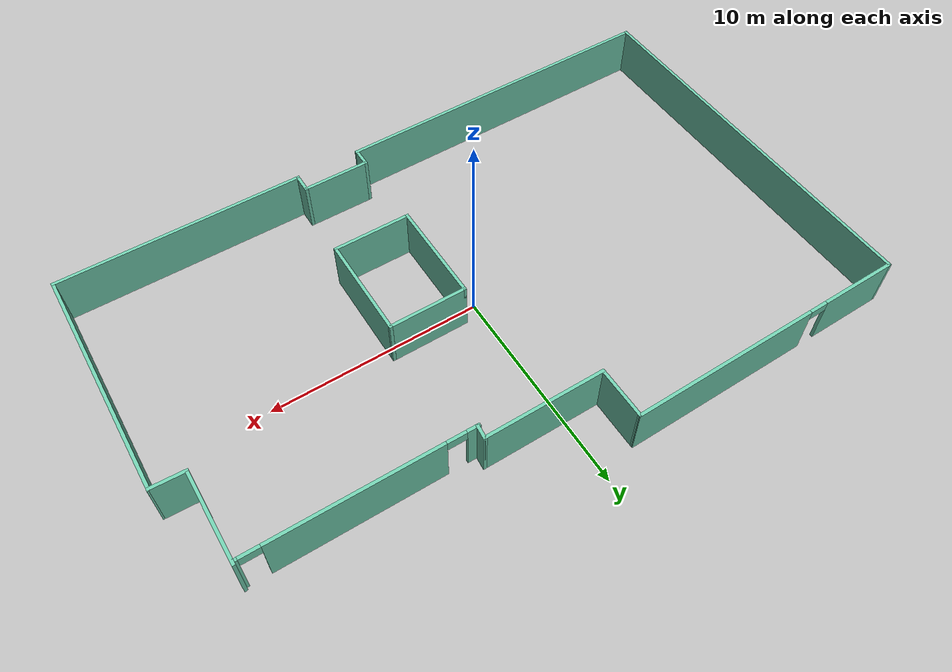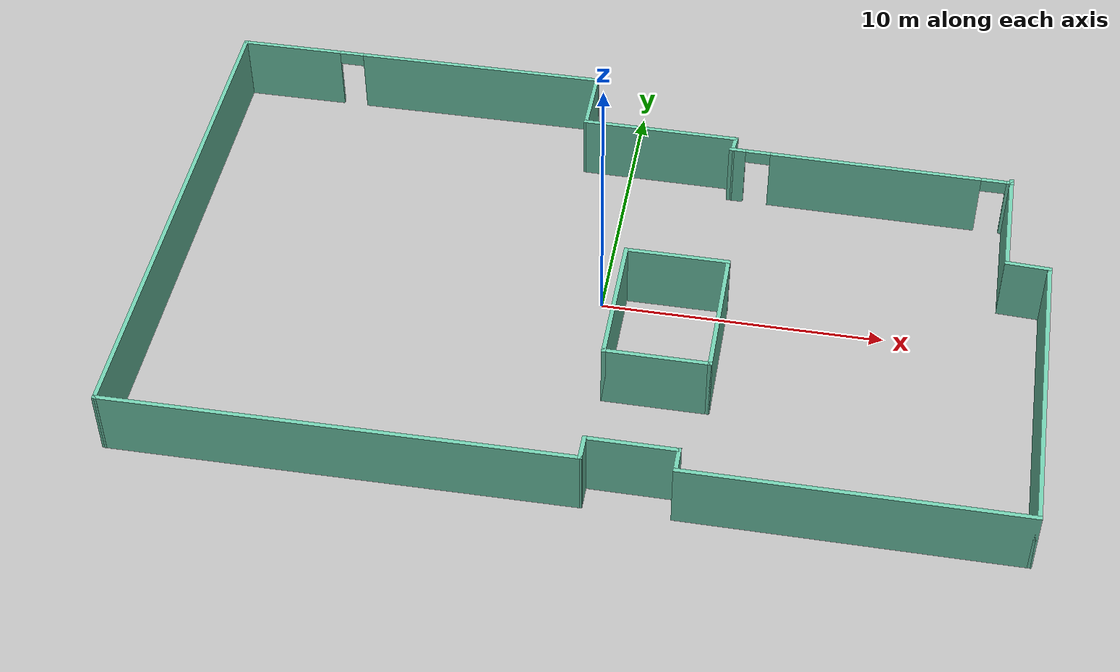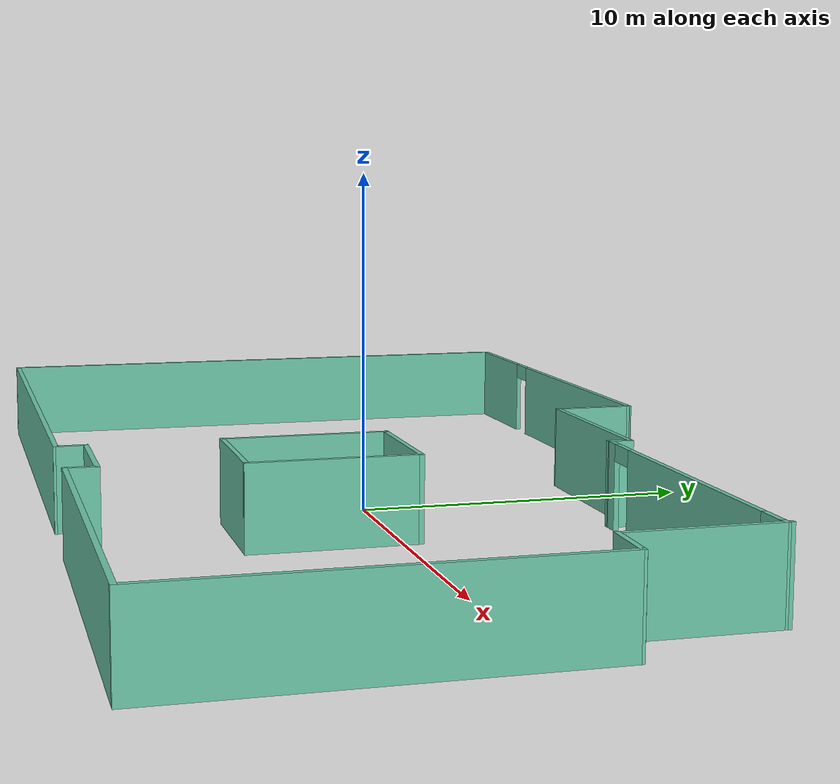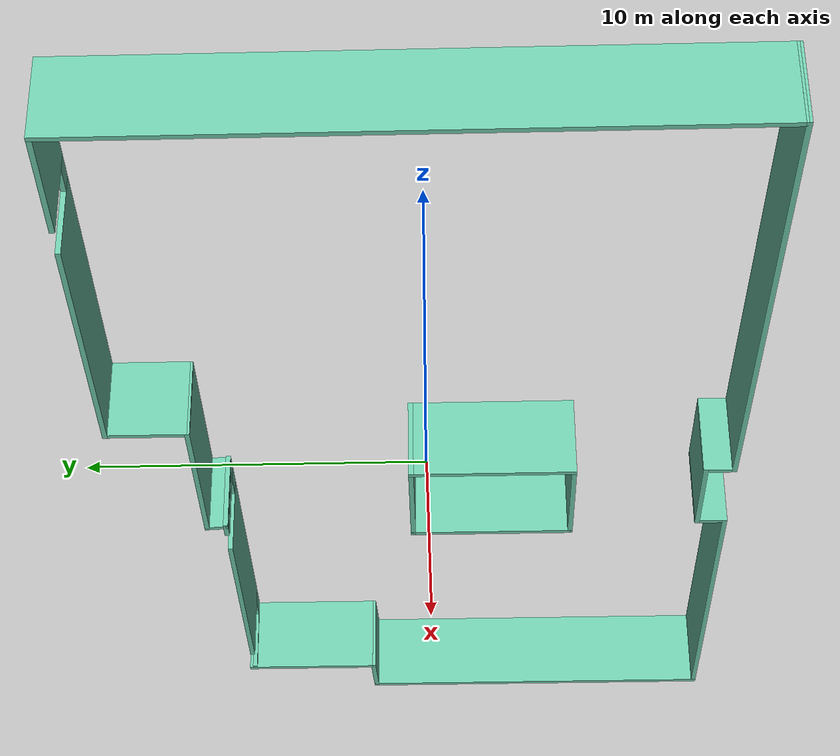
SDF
<?xml version='1.0'?>
<sdf version='1.7'>
  <model name='RAH-lab'>
    <link name='Wall_0'>
      <pose>-15.4096 -0.034118 0 0 0 -1.5708</pose>
      <self_collide>0</self_collide>
      <enable_wind>0</enable_wind>
      <kinematic>0</kinematic>
      <visual name='Wall_0_Visual'>
        <pose>0 0 1.25 0 -0 0</pose>
        <geometry>
          <box>
            <size>18.5837 0.15 2.5</size>
          </box>
        </geometry>
        <material>
          <diffuse>0.435294 0.796078 0.67451 1</diffuse>
          <specular>0.1 0.1 0.1 1</specular>
          <ambient>0.435294 0.796078 0.67451 1</ambient>
          <shader type='pixel'/>
        </material>
        <meta>
          <layer>0</layer>
        </meta>
        <transparency>0</transparency>
        <cast_shadows>1</cast_shadows>
      </visual>
      <collision name='Wall_0_Collision'>
        <laser_retro>0</laser_retro>
        <max_contacts>10</max_contacts>
        <pose>0 0 1.25 0 -0 0</pose>
        <geometry>
          <box>
            <size>18.5837 0.15 2.5</size>
          </box>
        </geometry>
        <surface>
          <friction>
            <ode>
              <mu>1</mu>
              <mu2>1</mu2>
              <fdir1>0 0 0</fdir1>
              <slip1>0</slip1>
              <slip2>0</slip2>
            </ode>
            <torsional>
              <coefficient>1</coefficient>
              <patch_radius>0</patch_radius>
              <surface_radius>0</surface_radius>
              <use_patch_radius>1</use_patch_radius>
              <ode>
                <slip>0</slip>
              </ode>
            </torsional>
          </friction>
          <bounce>
            <restitution_coefficient>0</restitution_coefficient>
            <threshold>1e+06</threshold>
          </bounce>
          <contact>
            <collide_without_contact>0</collide_without_contact>
            <collide_without_contact_bitmask>1</collide_without_contact_bitmask>
            <collide_bitmask>1</collide_bitmask>
            <ode>
              <soft_cfm>0</soft_cfm>
              <soft_erp>0.2</soft_erp>
              <kp>1e+13</kp>
              <kd>1</kd>
              <max_vel>0.01</max_vel>
              <min_depth>0</min_depth>
            </ode>
            <bullet>
              <split_impulse>1</split_impulse>
              <split_impulse_penetration_threshold>-0.01</split_impulse_penetration_threshold>
              <soft_cfm>0</soft_cfm>
              <soft_erp>0.2</soft_erp>
              <kp>1e+13</kp>
              <kd>1</kd>
            </bullet>
          </contact>
        </surface>
      </collision>
    </link>
    <link name='Wall_1'>
      <pose>-7.31852 -9.1806 0 0 -0 0.008695</pose>
      <self_collide>0</self_collide>
      <enable_wind>0</enable_wind>
      <kinematic>0</kinematic>
      <visual name='Wall_1_Visual'>
        <pose>0 0 1.25 0 -0 0</pose>
        <geometry>
          <box>
            <size>16.3328 0.15 2.5</size>
          </box>
        </geometry>
        <material>
          <diffuse>0.435294 0.796078 0.67451 1</diffuse>
          <specular>0.1 0.1 0.1 1</specular>
          <ambient>0.435294 0.796078 0.67451 1</ambient>
          <shader type='pixel'/>
        </material>
        <meta>
          <layer>0</layer>
        </meta>
        <transparency>0</transparency>
        <cast_shadows>1</cast_shadows>
      </visual>
      <collision name='Wall_1_Collision'>
        <laser_retro>0</laser_retro>
        <max_contacts>10</max_contacts>
        <pose>0 0 1.25 0 -0 0</pose>
        <geometry>
          <box>
            <size>16.3328 0.15 2.5</size>
          </box>
        </geometry>
        <surface>
          <friction>
            <ode>
              <mu>1</mu>
              <mu2>1</mu2>
              <fdir1>0 0 0</fdir1>
              <slip1>0</slip1>
              <slip2>0</slip2>
            </ode>
            <torsional>
              <coefficient>1</coefficient>
              <patch_radius>0</patch_radius>
              <surface_radius>0</surface_radius>
              <use_patch_radius>1</use_patch_radius>
              <ode>
                <slip>0</slip>
              </ode>
            </torsional>
          </friction>
          <bounce>
            <restitution_coefficient>0</restitution_coefficient>
            <threshold>1e+06</threshold>
          </bounce>
          <contact>
            <collide_without_contact>0</collide_without_contact>
            <collide_without_contact_bitmask>1</collide_without_contact_bitmask>
            <collide_bitmask>1</collide_bitmask>
            <ode>
              <soft_cfm>0</soft_cfm>
              <soft_erp>0.2</soft_erp>
              <kp>1e+13</kp>
              <kd>1</kd>
              <max_vel>0.01</max_vel>
              <min_depth>0</min_depth>
            </ode>
            <bullet>
              <split_impulse>1</split_impulse>
              <split_impulse_penetration_threshold>-0.01</split_impulse_penetration_threshold>
              <soft_cfm>0</soft_cfm>
              <soft_erp>0.2</soft_erp>
              <kp>1e+13</kp>
              <kd>1</kd>
            </bullet>
          </contact>
        </surface>
      </collision>
    </link>
    <link name='Wall_10'>
      <pose>3.82389 6.55251 0 0 -0 1.47981</pose>
      <self_collide>0</self_collide>
      <enable_wind>0</enable_wind>
      <kinematic>0</kinematic>
      <visual name='Wall_10_Visual'>
        <pose>0 0 1.25 0 -0 0</pose>
        <geometry>
          <box>
            <size>0.732199 0.15 2.5</size>
          </box>
        </geometry>
        <material>
          <diffuse>0.435294 0.796078 0.67451 1</diffuse>
          <specular>0.1 0.1 0.1 1</specular>
          <ambient>0.435294 0.796078 0.67451 1</ambient>
          <shader type='pixel'/>
        </material>
        <meta>
          <layer>0</layer>
        </meta>
        <transparency>0</transparency>
        <cast_shadows>1</cast_shadows>
      </visual>
      <collision name='Wall_10_Collision'>
        <laser_retro>0</laser_retro>
        <max_contacts>10</max_contacts>
        <pose>0 0 1.25 0 -0 0</pose>
        <geometry>
          <box>
            <size>0.732199 0.15 2.5</size>
          </box>
        </geometry>
        <surface>
          <friction>
            <ode>
              <mu>1</mu>
              <mu2>1</mu2>
              <fdir1>0 0 0</fdir1>
              <slip1>0</slip1>
              <slip2>0</slip2>
            </ode>
            <torsional>
              <coefficient>1</coefficient>
              <patch_radius>0</patch_radius>
              <surface_radius>0</surface_radius>
              <use_patch_radius>1</use_patch_radius>
              <ode>
                <slip>0</slip>
              </ode>
            </torsional>
          </friction>
          <bounce>
            <restitution_coefficient>0</restitution_coefficient>
            <threshold>1e+06</threshold>
          </bounce>
          <contact>
            <collide_without_contact>0</collide_without_contact>
            <collide_without_contact_bitmask>1</collide_without_contact_bitmask>
            <collide_bitmask>1</collide_bitmask>
            <ode>
              <soft_cfm>0</soft_cfm>
              <soft_erp>0.2</soft_erp>
              <kp>1e+13</kp>
              <kd>1</kd>
              <max_vel>0.01</max_vel>
              <min_depth>0</min_depth>
            </ode>
            <bullet>
              <split_impulse>1</split_impulse>
              <split_impulse_penetration_threshold>-0.01</split_impulse_penetration_threshold>
              <soft_cfm>0</soft_cfm>
              <soft_erp>0.2</soft_erp>
              <kp>1e+13</kp>
              <kd>1</kd>
            </bullet>
          </contact>
        </surface>
      </collision>
    </link>
    <link name='Wall_11'>
      <pose>1.02612 6.85661 0 0 -0 3.13647</pose>
      <self_collide>0</self_collide>
      <enable_wind>0</enable_wind>
      <kinematic>0</kinematic>
      <visual name='Wall_11_Visual'>
        <pose>0 0 1.25 0 -0 0</pose>
        <geometry>
          <box>
            <size>5.69272 0.15 2.5</size>
          </box>
        </geometry>
        <material>
          <diffuse>0.435294 0.796078 0.67451 1</diffuse>
          <specular>0.1 0.1 0.1 1</specular>
          <ambient>0.435294 0.796078 0.67451 1</ambient>
          <shader type='pixel'/>
        </material>
        <meta>
          <layer>0</layer>
        </meta>
        <transparency>0</transparency>
        <cast_shadows>1</cast_shadows>
      </visual>
      <collision name='Wall_11_Collision'>
        <laser_retro>0</laser_retro>
        <max_contacts>10</max_contacts>
        <pose>0 0 1.25 0 -0 0</pose>
        <geometry>
          <box>
            <size>5.69272 0.15 2.5</size>
          </box>
        </geometry>
        <surface>
          <friction>
            <ode>
              <mu>1</mu>
              <mu2>1</mu2>
              <fdir1>0 0 0</fdir1>
              <slip1>0</slip1>
              <slip2>0</slip2>
            </ode>
            <torsional>
              <coefficient>1</coefficient>
              <patch_radius>0</patch_radius>
              <surface_radius>0</surface_radius>
              <use_patch_radius>1</use_patch_radius>
              <ode>
                <slip>0</slip>
              </ode>
            </torsional>
          </friction>
          <bounce>
            <restitution_coefficient>0</restitution_coefficient>
            <threshold>1e+06</threshold>
          </bounce>
          <contact>
            <collide_without_contact>0</collide_without_contact>
            <collide_without_contact_bitmask>1</collide_without_contact_bitmask>
            <collide_bitmask>1</collide_bitmask>
            <ode>
              <soft_cfm>0</soft_cfm>
              <soft_erp>0.2</soft_erp>
              <kp>1e+13</kp>
              <kd>1</kd>
              <max_vel>0.01</max_vel>
              <min_depth>0</min_depth>
            </ode>
            <bullet>
              <split_impulse>1</split_impulse>
              <split_impulse_penetration_threshold>-0.01</split_impulse_penetration_threshold>
              <soft_cfm>0</soft_cfm>
              <soft_erp>0.2</soft_erp>
              <kp>1e+13</kp>
              <kd>1</kd>
            </bullet>
          </contact>
        </surface>
      </collision>
    </link>
    <link name='Wall_12'>
      <pose>-1.7452 8.04581 0 0 -0 1.5708</pose>
      <self_collide>0</self_collide>
      <enable_wind>0</enable_wind>
      <kinematic>0</kinematic>
      <visual name='Wall_12_Visual'>
        <pose>0 0 1.25 0 -0 0</pose>
        <geometry>
          <box>
            <size>2.5 0.15 2.5</size>
          </box>
        </geometry>
        <material>
          <diffuse>0.435294 0.796078 0.67451 1</diffuse>
          <specular>0.1 0.1 0.1 1</specular>
          <ambient>0.435294 0.796078 0.67451 1</ambient>
          <shader type='pixel'/>
        </material>
        <meta>
          <layer>0</layer>
        </meta>
        <transparency>0</transparency>
        <cast_shadows>1</cast_shadows>
      </visual>
      <collision name='Wall_12_Collision'>
        <laser_retro>0</laser_retro>
        <max_contacts>10</max_contacts>
        <pose>0 0 1.25 0 -0 0</pose>
        <geometry>
          <box>
            <size>2.5 0.15 2.5</size>
          </box>
        </geometry>
        <surface>
          <friction>
            <ode>
              <mu>1</mu>
              <mu2>1</mu2>
              <fdir1>0 0 0</fdir1>
              <slip1>0</slip1>
              <slip2>0</slip2>
            </ode>
            <torsional>
              <coefficient>1</coefficient>
              <patch_radius>0</patch_radius>
              <surface_radius>0</surface_radius>
              <use_patch_radius>1</use_patch_radius>
              <ode>
                <slip>0</slip>
              </ode>
            </torsional>
          </friction>
          <bounce>
            <restitution_coefficient>0</restitution_coefficient>
            <threshold>1e+06</threshold>
          </bounce>
          <contact>
            <collide_without_contact>0</collide_without_contact>
            <collide_without_contact_bitmask>1</collide_without_contact_bitmask>
            <collide_bitmask>1</collide_bitmask>
            <ode>
              <soft_cfm>0</soft_cfm>
              <soft_erp>0.2</soft_erp>
              <kp>1e+13</kp>
              <kd>1</kd>
              <max_vel>0.01</max_vel>
              <min_depth>0</min_depth>
            </ode>
            <bullet>
              <split_impulse>1</split_impulse>
              <split_impulse_penetration_threshold>-0.01</split_impulse_penetration_threshold>
              <soft_cfm>0</soft_cfm>
              <soft_erp>0.2</soft_erp>
              <kp>1e+13</kp>
              <kd>1</kd>
            </bullet>
          </contact>
        </surface>
      </collision>
    </link>
    <link name='Wall_13'>
      <pose>-8.547 9.21697 0 0 0 -3.13656</pose>
      <self_collide>0</self_collide>
      <enable_wind>0</enable_wind>
      <kinematic>0</kinematic>
      <visual name='Wall_13_Visual_1'>
        <pose>5.00383 0 1.25 0 -0 0</pose>
        <geometry>
          <box>
            <size>3.74618 0.15 2.5</size>
          </box>
        </geometry>
        <material>
          <diffuse>0.435294 0.796078 0.67451 1</diffuse>
          <specular>0.1 0.1 0.1 1</specular>
          <ambient>0.435294 0.796078 0.67451 1</ambient>
          <shader type='pixel'/>
        </material>
        <meta>
          <layer>0</layer>
        </meta>
        <transparency>0</transparency>
        <cast_shadows>1</cast_shadows>
      </visual>
      <visual name='Wall_13_Visual_2'>
        <pose>2.68074 0 2.25 0 -0 0</pose>
        <geometry>
          <box>
            <size>0.9 0.15 0.5</size>
          </box>
        </geometry>
        <material>
          <diffuse>0.435294 0.796078 0.67451 1</diffuse>
          <specular>0.1 0.1 0.1 1</specular>
          <ambient>0.435294 0.796078 0.67451 1</ambient>
          <shader type='pixel'/>
        </material>
        <meta>
          <layer>0</layer>
        </meta>
        <transparency>0</transparency>
        <cast_shadows>1</cast_shadows>
      </visual>
      <visual name='Wall_13_Visual_0'>
        <pose>-2.32309 0 1.25 0 -0 0</pose>
        <geometry>
          <box>
            <size>9.10767 0.15 2.5</size>
          </box>
        </geometry>
        <material>
          <diffuse>0.435294 0.796078 0.67451 1</diffuse>
          <specular>0.1 0.1 0.1 1</specular>
          <ambient>0.435294 0.796078 0.67451 1</ambient>
          <shader type='pixel'/>
        </material>
        <meta>
          <layer>0</layer>
        </meta>
        <transparency>0</transparency>
        <cast_shadows>1</cast_shadows>
      </visual>
      <collision name='Wall_13_Collision_0'>
        <laser_retro>0</laser_retro>
        <max_contacts>10</max_contacts>
        <pose>-2.32309 0 1.25 0 -0 0</pose>
        <geometry>
          <box>
            <size>9.10767 0.15 2.5</size>
          </box>
        </geometry>
        <surface>
          <friction>
            <ode>
              <mu>1</mu>
              <mu2>1</mu2>
              <fdir1>0 0 0</fdir1>
              <slip1>0</slip1>
              <slip2>0</slip2>
            </ode>
            <torsional>
              <coefficient>1</coefficient>
              <patch_radius>0</patch_radius>
              <surface_radius>0</surface_radius>
              <use_patch_radius>1</use_patch_radius>
              <ode>
                <slip>0</slip>
              </ode>
            </torsional>
          </friction>
          <bounce>
            <restitution_coefficient>0</restitution_coefficient>
            <threshold>1e+06</threshold>
          </bounce>
          <contact>
            <collide_without_contact>0</collide_without_contact>
            <collide_without_contact_bitmask>1</collide_without_contact_bitmask>
            <collide_bitmask>1</collide_bitmask>
            <ode>
              <soft_cfm>0</soft_cfm>
              <soft_erp>0.2</soft_erp>
              <kp>1e+13</kp>
              <kd>1</kd>
              <max_vel>0.01</max_vel>
              <min_depth>0</min_depth>
            </ode>
            <bullet>
              <split_impulse>1</split_impulse>
              <split_impulse_penetration_threshold>-0.01</split_impulse_penetration_threshold>
              <soft_cfm>0</soft_cfm>
              <soft_erp>0.2</soft_erp>
              <kp>1e+13</kp>
              <kd>1</kd>
            </bullet>
          </contact>
        </surface>
      </collision>
      <collision name='Wall_13_Collision_2'>
        <laser_retro>0</laser_retro>
        <max_contacts>10</max_contacts>
        <pose>2.68074 0 2.25 0 -0 0</pose>
        <geometry>
          <box>
            <size>0.9 0.15 0.5</size>
          </box>
        </geometry>
        <surface>
          <friction>
            <ode>
              <mu>1</mu>
              <mu2>1</mu2>
              <fdir1>0 0 0</fdir1>
              <slip1>0</slip1>
              <slip2>0</slip2>
            </ode>
            <torsional>
              <coefficient>1</coefficient>
              <patch_radius>0</patch_radius>
              <surface_radius>0</surface_radius>
              <use_patch_radius>1</use_patch_radius>
              <ode>
                <slip>0</slip>
              </ode>
            </torsional>
          </friction>
          <bounce>
            <restitution_coefficient>0</restitution_coefficient>
            <threshold>1e+06</threshold>
          </bounce>
          <contact>
            <collide_without_contact>0</collide_without_contact>
            <collide_without_contact_bitmask>1</collide_without_contact_bitmask>
            <collide_bitmask>1</collide_bitmask>
            <ode>
              <soft_cfm>0</soft_cfm>
              <soft_erp>0.2</soft_erp>
              <kp>1e+13</kp>
              <kd>1</kd>
              <max_vel>0.01</max_vel>
              <min_depth>0</min_depth>
            </ode>
            <bullet>
              <split_impulse>1</split_impulse>
              <split_impulse_penetration_threshold>-0.01</split_impulse_penetration_threshold>
              <soft_cfm>0</soft_cfm>
              <soft_erp>0.2</soft_erp>
              <kp>1e+13</kp>
              <kd>1</kd>
            </bullet>
          </contact>
        </surface>
      </collision>
      <collision name='Wall_13_Collision_1'>
        <laser_retro>0</laser_retro>
        <max_contacts>10</max_contacts>
        <pose>5.00383 0 1.25 0 -0 0</pose>
        <geometry>
          <box>
            <size>3.74618 0.15 2.5</size>
          </box>
        </geometry>
        <surface>
          <friction>
            <ode>
              <mu>1</mu>
              <mu2>1</mu2>
              <fdir1>0 0 0</fdir1>
              <slip1>0</slip1>
              <slip2>0</slip2>
            </ode>
            <torsional>
              <coefficient>1</coefficient>
              <patch_radius>0</patch_radius>
              <surface_radius>0</surface_radius>
              <use_patch_radius>1</use_patch_radius>
              <ode>
                <slip>0</slip>
              </ode>
            </torsional>
          </friction>
          <bounce>
            <restitution_coefficient>0</restitution_coefficient>
            <threshold>1e+06</threshold>
          </bounce>
          <contact>
            <collide_without_contact>0</collide_without_contact>
            <collide_without_contact_bitmask>1</collide_without_contact_bitmask>
            <collide_bitmask>1</collide_bitmask>
            <ode>
              <soft_cfm>0</soft_cfm>
              <soft_erp>0.2</soft_erp>
              <kp>1e+13</kp>
              <kd>1</kd>
              <max_vel>0.01</max_vel>
              <min_depth>0</min_depth>
            </ode>
            <bullet>
              <split_impulse>1</split_impulse>
              <split_impulse_penetration_threshold>-0.01</split_impulse_penetration_threshold>
              <soft_cfm>0</soft_cfm>
              <soft_erp>0.2</soft_erp>
              <kp>1e+13</kp>
              <kd>1</kd>
            </bullet>
          </contact>
        </surface>
      </collision>
    </link>
    <link name='Wall_15'>
      <pose>0.761931 -1.9537 0 0 0 -1.5708</pose>
      <self_collide>0</self_collide>
      <enable_wind>0</enable_wind>
      <kinematic>0</kinematic>
      <visual name='Wall_15_Visual'>
        <pose>0 0 1.25 0 -0 0</pose>
        <geometry>
          <box>
            <size>5 0.15 2.5</size>
          </box>
        </geometry>
        <material>
          <diffuse>0.435294 0.796078 0.67451 1</diffuse>
          <specular>0.1 0.1 0.1 1</specular>
          <ambient>0.435294 0.796078 0.67451 1</ambient>
          <shader type='pixel'/>
        </material>
        <meta>
          <layer>0</layer>
        </meta>
        <transparency>0</transparency>
        <cast_shadows>1</cast_shadows>
      </visual>
      <collision name='Wall_15_Collision'>
        <laser_retro>0</laser_retro>
        <max_contacts>10</max_contacts>
        <pose>0 0 1.25 0 -0 0</pose>
        <geometry>
          <box>
            <size>5 0.15 2.5</size>
          </box>
        </geometry>
        <surface>
          <friction>
            <ode>
              <mu>1</mu>
              <mu2>1</mu2>
              <fdir1>0 0 0</fdir1>
              <slip1>0</slip1>
              <slip2>0</slip2>
            </ode>
            <torsional>
              <coefficient>1</coefficient>
              <patch_radius>0</patch_radius>
              <surface_radius>0</surface_radius>
              <use_patch_radius>1</use_patch_radius>
              <ode>
                <slip>0</slip>
              </ode>
            </torsional>
          </friction>
          <bounce>
            <restitution_coefficient>0</restitution_coefficient>
            <threshold>1e+06</threshold>
          </bounce>
          <contact>
            <collide_without_contact>0</collide_without_contact>
            <collide_without_contact_bitmask>1</collide_without_contact_bitmask>
            <collide_bitmask>1</collide_bitmask>
            <ode>
              <soft_cfm>0</soft_cfm>
              <soft_erp>0.2</soft_erp>
              <kp>1e+13</kp>
              <kd>1</kd>
              <max_vel>0.01</max_vel>
              <min_depth>0</min_depth>
            </ode>
            <bullet>
              <split_impulse>1</split_impulse>
              <split_impulse_penetration_threshold>-0.01</split_impulse_penetration_threshold>
              <soft_cfm>0</soft_cfm>
              <soft_erp>0.2</soft_erp>
              <kp>1e+13</kp>
              <kd>1</kd>
            </bullet>
          </contact>
        </surface>
      </collision>
    </link>
    <link name='Wall_16'>
      <pose>2.56193 -4.3787 0 0 -0 0</pose>
      <self_collide>0</self_collide>
      <enable_wind>0</enable_wind>
      <kinematic>0</kinematic>
      <visual name='Wall_16_Visual'>
        <pose>0 0 1.25 0 -0 0</pose>
        <geometry>
          <box>
            <size>3.75 0.15 2.5</size>
          </box>
        </geometry>
        <material>
          <diffuse>0.435294 0.796078 0.67451 1</diffuse>
          <specular>0.1 0.1 0.1 1</specular>
          <ambient>0.435294 0.796078 0.67451 1</ambient>
          <shader type='pixel'/>
        </material>
        <meta>
          <layer>0</layer>
        </meta>
        <transparency>0</transparency>
        <cast_shadows>1</cast_shadows>
      </visual>
      <collision name='Wall_16_Collision'>
        <laser_retro>0</laser_retro>
        <max_contacts>10</max_contacts>
        <pose>0 0 1.25 0 -0 0</pose>
        <geometry>
          <box>
            <size>3.75 0.15 2.5</size>
          </box>
        </geometry>
        <surface>
          <friction>
            <ode>
              <mu>1</mu>
              <mu2>1</mu2>
              <fdir1>0 0 0</fdir1>
              <slip1>0</slip1>
              <slip2>0</slip2>
            </ode>
            <torsional>
              <coefficient>1</coefficient>
              <patch_radius>0</patch_radius>
              <surface_radius>0</surface_radius>
              <use_patch_radius>1</use_patch_radius>
              <ode>
                <slip>0</slip>
              </ode>
            </torsional>
          </friction>
          <bounce>
            <restitution_coefficient>0</restitution_coefficient>
            <threshold>1e+06</threshold>
          </bounce>
          <contact>
            <collide_without_contact>0</collide_without_contact>
            <collide_without_contact_bitmask>1</collide_without_contact_bitmask>
            <collide_bitmask>1</collide_bitmask>
            <ode>
              <soft_cfm>0</soft_cfm>
              <soft_erp>0.2</soft_erp>
              <kp>1e+13</kp>
              <kd>1</kd>
              <max_vel>0.01</max_vel>
              <min_depth>0</min_depth>
            </ode>
            <bullet>
              <split_impulse>1</split_impulse>
              <split_impulse_penetration_threshold>-0.01</split_impulse_penetration_threshold>
              <soft_cfm>0</soft_cfm>
              <soft_erp>0.2</soft_erp>
              <kp>1e+13</kp>
              <kd>1</kd>
            </bullet>
          </contact>
        </surface>
      </collision>
    </link>
    <link name='Wall_17'>
      <pose>4.36193 -1.9537 0 0 -0 1.5708</pose>
      <self_collide>0</self_collide>
      <enable_wind>0</enable_wind>
      <kinematic>0</kinematic>
      <visual name='Wall_17_Visual'>
        <pose>0 0 1.25 0 -0 0</pose>
        <geometry>
          <box>
            <size>5 0.15 2.5</size>
          </box>
        </geometry>
        <material>
          <diffuse>0.435294 0.796078 0.67451 1</diffuse>
          <specular>0.1 0.1 0.1 1</specular>
          <ambient>0.435294 0.796078 0.67451 1</ambient>
          <shader type='pixel'/>
        </material>
        <meta>
          <layer>0</layer>
        </meta>
        <transparency>0</transparency>
        <cast_shadows>1</cast_shadows>
      </visual>
      <collision name='Wall_17_Collision'>
        <laser_retro>0</laser_retro>
        <max_contacts>10</max_contacts>
        <pose>0 0 1.25 0 -0 0</pose>
        <geometry>
          <box>
            <size>5 0.15 2.5</size>
          </box>
        </geometry>
        <surface>
          <friction>
            <ode>
              <mu>1</mu>
              <mu2>1</mu2>
              <fdir1>0 0 0</fdir1>
              <slip1>0</slip1>
              <slip2>0</slip2>
            </ode>
            <torsional>
              <coefficient>1</coefficient>
              <patch_radius>0</patch_radius>
              <surface_radius>0</surface_radius>
              <use_patch_radius>1</use_patch_radius>
              <ode>
                <slip>0</slip>
              </ode>
            </torsional>
          </friction>
          <bounce>
            <restitution_coefficient>0</restitution_coefficient>
            <threshold>1e+06</threshold>
          </bounce>
          <contact>
            <collide_without_contact>0</collide_without_contact>
            <collide_without_contact_bitmask>1</collide_without_contact_bitmask>
            <collide_bitmask>1</collide_bitmask>
            <ode>
              <soft_cfm>0</soft_cfm>
              <soft_erp>0.2</soft_erp>
              <kp>1e+13</kp>
              <kd>1</kd>
              <max_vel>0.01</max_vel>
              <min_depth>0</min_depth>
            </ode>
            <bullet>
              <split_impulse>1</split_impulse>
              <split_impulse_penetration_threshold>-0.01</split_impulse_penetration_threshold>
              <soft_cfm>0</soft_cfm>
              <soft_erp>0.2</soft_erp>
              <kp>1e+13</kp>
              <kd>1</kd>
            </bullet>
          </contact>
        </surface>
      </collision>
    </link>
    <link name='Wall_18'>
      <pose>2.56193 0.471296 0 0 -0 3.14159</pose>
      <self_collide>0</self_collide>
      <enable_wind>0</enable_wind>
      <kinematic>0</kinematic>
      <visual name='Wall_18_Visual'>
        <pose>0 0 1.25 0 -0 0</pose>
        <geometry>
          <box>
            <size>3.75 0.15 2.5</size>
          </box>
        </geometry>
        <material>
          <diffuse>0.435294 0.796078 0.67451 1</diffuse>
          <specular>0.1 0.1 0.1 1</specular>
          <ambient>0.435294 0.796078 0.67451 1</ambient>
          <shader type='pixel'/>
        </material>
        <meta>
          <layer>0</layer>
        </meta>
        <transparency>0</transparency>
        <cast_shadows>1</cast_shadows>
      </visual>
      <collision name='Wall_18_Collision'>
        <laser_retro>0</laser_retro>
        <max_contacts>10</max_contacts>
        <pose>0 0 1.25 0 -0 0</pose>
        <geometry>
          <box>
            <size>3.75 0.15 2.5</size>
          </box>
        </geometry>
        <surface>
          <friction>
            <ode>
              <mu>1</mu>
              <mu2>1</mu2>
              <fdir1>0 0 0</fdir1>
              <slip1>0</slip1>
              <slip2>0</slip2>
            </ode>
            <torsional>
              <coefficient>1</coefficient>
              <patch_radius>0</patch_radius>
              <surface_radius>0</surface_radius>
              <use_patch_radius>1</use_patch_radius>
              <ode>
                <slip>0</slip>
              </ode>
            </torsional>
          </friction>
          <bounce>
            <restitution_coefficient>0</restitution_coefficient>
            <threshold>1e+06</threshold>
          </bounce>
          <contact>
            <collide_without_contact>0</collide_without_contact>
            <collide_without_contact_bitmask>1</collide_without_contact_bitmask>
            <collide_bitmask>1</collide_bitmask>
            <ode>
              <soft_cfm>0</soft_cfm>
              <soft_erp>0.2</soft_erp>
              <kp>1e+13</kp>
              <kd>1</kd>
              <max_vel>0.01</max_vel>
              <min_depth>0</min_depth>
            </ode>
            <bullet>
              <split_impulse>1</split_impulse>
              <split_impulse_penetration_threshold>-0.01</split_impulse_penetration_threshold>
              <soft_cfm>0</soft_cfm>
              <soft_erp>0.2</soft_erp>
              <kp>1e+13</kp>
              <kd>1</kd>
            </bullet>
          </contact>
        </surface>
      </collision>
    </link>
    <link name='Wall_2'>
      <pose>0.772595 -8.68809 0 0 -0 1.5708</pose>
      <self_collide>0</self_collide>
      <enable_wind>0</enable_wind>
      <kinematic>0</kinematic>
      <visual name='Wall_2_Visual'>
        <pose>0 0 1.25 0 -0 0</pose>
        <geometry>
          <box>
            <size>0.99429 0.15 2.5</size>
          </box>
        </geometry>
        <material>
          <diffuse>0.435294 0.796078 0.67451 1</diffuse>
          <specular>0.1 0.1 0.1 1</specular>
          <ambient>0.435294 0.796078 0.67451 1</ambient>
          <shader type='pixel'/>
        </material>
        <meta>
          <layer>0</layer>
        </meta>
        <transparency>0</transparency>
        <cast_shadows>1</cast_shadows>
      </visual>
      <collision name='Wall_2_Collision'>
        <laser_retro>0</laser_retro>
        <max_contacts>10</max_contacts>
        <pose>0 0 1.25 0 -0 0</pose>
        <geometry>
          <box>
            <size>0.99429 0.15 2.5</size>
          </box>
        </geometry>
        <surface>
          <friction>
            <ode>
              <mu>1</mu>
              <mu2>1</mu2>
              <fdir1>0 0 0</fdir1>
              <slip1>0</slip1>
              <slip2>0</slip2>
            </ode>
            <torsional>
              <coefficient>1</coefficient>
              <patch_radius>0</patch_radius>
              <surface_radius>0</surface_radius>
              <use_patch_radius>1</use_patch_radius>
              <ode>
                <slip>0</slip>
              </ode>
            </torsional>
          </friction>
          <bounce>
            <restitution_coefficient>0</restitution_coefficient>
            <threshold>1e+06</threshold>
          </bounce>
          <contact>
            <collide_without_contact>0</collide_without_contact>
            <collide_without_contact_bitmask>1</collide_without_contact_bitmask>
            <collide_bitmask>1</collide_bitmask>
            <ode>
              <soft_cfm>0</soft_cfm>
              <soft_erp>0.2</soft_erp>
              <kp>1e+13</kp>
              <kd>1</kd>
              <max_vel>0.01</max_vel>
              <min_depth>0</min_depth>
            </ode>
            <bullet>
              <split_impulse>1</split_impulse>
              <split_impulse_penetration_threshold>-0.01</split_impulse_penetration_threshold>
              <soft_cfm>0</soft_cfm>
              <soft_erp>0.2</soft_erp>
              <kp>1e+13</kp>
              <kd>1</kd>
            </bullet>
          </contact>
        </surface>
      </collision>
    </link>
    <link name='Wall_3'>
      <pose>2.32046 -8.26595 0 0 -0 0</pose>
      <self_collide>0</self_collide>
      <enable_wind>0</enable_wind>
      <kinematic>0</kinematic>
      <visual name='Wall_3_Visual'>
        <pose>0 0 1.25 0 -0 0</pose>
        <geometry>
          <box>
            <size>3.24573 0.15 2.5</size>
          </box>
        </geometry>
        <material>
          <diffuse>0.435294 0.796078 0.67451 1</diffuse>
          <specular>0.1 0.1 0.1 1</specular>
          <ambient>0.435294 0.796078 0.67451 1</ambient>
          <shader type='pixel'/>
        </material>
        <meta>
          <layer>0</layer>
        </meta>
        <transparency>0</transparency>
        <cast_shadows>1</cast_shadows>
      </visual>
      <collision name='Wall_3_Collision'>
        <laser_retro>0</laser_retro>
        <max_contacts>10</max_contacts>
        <pose>0 0 1.25 0 -0 0</pose>
        <geometry>
          <box>
            <size>3.24573 0.15 2.5</size>
          </box>
        </geometry>
        <surface>
          <friction>
            <ode>
              <mu>1</mu>
              <mu2>1</mu2>
              <fdir1>0 0 0</fdir1>
              <slip1>0</slip1>
              <slip2>0</slip2>
            </ode>
            <torsional>
              <coefficient>1</coefficient>
              <patch_radius>0</patch_radius>
              <surface_radius>0</surface_radius>
              <use_patch_radius>1</use_patch_radius>
              <ode>
                <slip>0</slip>
              </ode>
            </torsional>
          </friction>
          <bounce>
            <restitution_coefficient>0</restitution_coefficient>
            <threshold>1e+06</threshold>
          </bounce>
          <contact>
            <collide_without_contact>0</collide_without_contact>
            <collide_without_contact_bitmask>1</collide_without_contact_bitmask>
            <collide_bitmask>1</collide_bitmask>
            <ode>
              <soft_cfm>0</soft_cfm>
              <soft_erp>0.2</soft_erp>
              <kp>1e+13</kp>
              <kd>1</kd>
              <max_vel>0.01</max_vel>
              <min_depth>0</min_depth>
            </ode>
            <bullet>
              <split_impulse>1</split_impulse>
              <split_impulse_penetration_threshold>-0.01</split_impulse_penetration_threshold>
              <soft_cfm>0</soft_cfm>
              <soft_erp>0.2</soft_erp>
              <kp>1e+13</kp>
              <kd>1</kd>
            </bullet>
          </contact>
        </surface>
      </collision>
    </link>
    <link name='Wall_4'>
      <pose>3.86833 -8.68809 0 0 0 -1.5708</pose>
      <self_collide>0</self_collide>
      <enable_wind>0</enable_wind>
      <kinematic>0</kinematic>
      <visual name='Wall_4_Visual'>
        <pose>0 0 1.25 0 -0 0</pose>
        <geometry>
          <box>
            <size>0.99429 0.15 2.5</size>
          </box>
        </geometry>
        <material>
          <diffuse>0.435294 0.796078 0.67451 1</diffuse>
          <specular>0.1 0.1 0.1 1</specular>
          <ambient>0.435294 0.796078 0.67451 1</ambient>
          <shader type='pixel'/>
        </material>
        <meta>
          <layer>0</layer>
        </meta>
        <transparency>0</transparency>
        <cast_shadows>1</cast_shadows>
      </visual>
      <collision name='Wall_4_Collision'>
        <laser_retro>0</laser_retro>
        <max_contacts>10</max_contacts>
        <pose>0 0 1.25 0 -0 0</pose>
        <geometry>
          <box>
            <size>0.99429 0.15 2.5</size>
          </box>
        </geometry>
        <surface>
          <friction>
            <ode>
              <mu>1</mu>
              <mu2>1</mu2>
              <fdir1>0 0 0</fdir1>
              <slip1>0</slip1>
              <slip2>0</slip2>
            </ode>
            <torsional>
              <coefficient>1</coefficient>
              <patch_radius>0</patch_radius>
              <surface_radius>0</surface_radius>
              <use_patch_radius>1</use_patch_radius>
              <ode>
                <slip>0</slip>
              </ode>
            </torsional>
          </friction>
          <bounce>
            <restitution_coefficient>0</restitution_coefficient>
            <threshold>1e+06</threshold>
          </bounce>
          <contact>
            <collide_without_contact>0</collide_without_contact>
            <collide_without_contact_bitmask>1</collide_without_contact_bitmask>
            <collide_bitmask>1</collide_bitmask>
            <ode>
              <soft_cfm>0</soft_cfm>
              <soft_erp>0.2</soft_erp>
              <kp>1e+13</kp>
              <kd>1</kd>
              <max_vel>0.01</max_vel>
              <min_depth>0</min_depth>
            </ode>
            <bullet>
              <split_impulse>1</split_impulse>
              <split_impulse_penetration_threshold>-0.01</split_impulse_penetration_threshold>
              <soft_cfm>0</soft_cfm>
              <soft_erp>0.2</soft_erp>
              <kp>1e+13</kp>
              <kd>1</kd>
            </bullet>
          </contact>
        </surface>
      </collision>
    </link>
    <link name='Wall_5'>
      <pose>9.63764 -9.11024 0 0 -0 0</pose>
      <self_collide>0</self_collide>
      <enable_wind>0</enable_wind>
      <kinematic>0</kinematic>
      <visual name='Wall_5_Visual'>
        <pose>0 0 1.25 0 -0 0</pose>
        <geometry>
          <box>
            <size>11.6886 0.15 2.5</size>
          </box>
        </geometry>
        <material>
          <diffuse>0.435294 0.796078 0.67451 1</diffuse>
          <specular>0.1 0.1 0.1 1</specular>
          <ambient>0.435294 0.796078 0.67451 1</ambient>
          <shader type='pixel'/>
        </material>
        <meta>
          <layer>0</layer>
        </meta>
        <transparency>0</transparency>
        <cast_shadows>1</cast_shadows>
      </visual>
      <collision name='Wall_5_Collision'>
        <laser_retro>0</laser_retro>
        <max_contacts>10</max_contacts>
        <pose>0 0 1.25 0 -0 0</pose>
        <geometry>
          <box>
            <size>11.6886 0.15 2.5</size>
          </box>
        </geometry>
        <surface>
          <friction>
            <ode>
              <mu>1</mu>
              <mu2>1</mu2>
              <fdir1>0 0 0</fdir1>
              <slip1>0</slip1>
              <slip2>0</slip2>
            </ode>
            <torsional>
              <coefficient>1</coefficient>
              <patch_radius>0</patch_radius>
              <surface_radius>0</surface_radius>
              <use_patch_radius>1</use_patch_radius>
              <ode>
                <slip>0</slip>
              </ode>
            </torsional>
          </friction>
          <bounce>
            <restitution_coefficient>0</restitution_coefficient>
            <threshold>1e+06</threshold>
          </bounce>
          <contact>
            <collide_without_contact>0</collide_without_contact>
            <collide_without_contact_bitmask>1</collide_without_contact_bitmask>
            <collide_bitmask>1</collide_bitmask>
            <ode>
              <soft_cfm>0</soft_cfm>
              <soft_erp>0.2</soft_erp>
              <kp>1e+13</kp>
              <kd>1</kd>
              <max_vel>0.01</max_vel>
              <min_depth>0</min_depth>
            </ode>
            <bullet>
              <split_impulse>1</split_impulse>
              <split_impulse_penetration_threshold>-0.01</split_impulse_penetration_threshold>
              <soft_cfm>0</soft_cfm>
              <soft_erp>0.2</soft_erp>
              <kp>1e+13</kp>
              <kd>1</kd>
            </bullet>
          </contact>
        </surface>
      </collision>
    </link>
    <link name='Wall_6'>
      <pose>15.407 -3.56024 0 0 -0 1.5708</pose>
      <self_collide>0</self_collide>
      <enable_wind>0</enable_wind>
      <kinematic>0</kinematic>
      <visual name='Wall_6_Visual'>
        <pose>0 0 1.25 0 -0 0</pose>
        <geometry>
          <box>
            <size>11.25 0.15 2.5</size>
          </box>
        </geometry>
        <material>
          <diffuse>0.435294 0.796078 0.67451 1</diffuse>
          <specular>0.1 0.1 0.1 1</specular>
          <ambient>0.435294 0.796078 0.67451 1</ambient>
          <shader type='pixel'/>
        </material>
        <meta>
          <layer>0</layer>
        </meta>
        <transparency>0</transparency>
        <cast_shadows>1</cast_shadows>
      </visual>
      <collision name='Wall_6_Collision'>
        <laser_retro>0</laser_retro>
        <max_contacts>10</max_contacts>
        <pose>0 0 1.25 0 -0 0</pose>
        <geometry>
          <box>
            <size>11.25 0.15 2.5</size>
          </box>
        </geometry>
        <surface>
          <friction>
            <ode>
              <mu>1</mu>
              <mu2>1</mu2>
              <fdir1>0 0 0</fdir1>
              <slip1>0</slip1>
              <slip2>0</slip2>
            </ode>
            <torsional>
              <coefficient>1</coefficient>
              <patch_radius>0</patch_radius>
              <surface_radius>0</surface_radius>
              <use_patch_radius>1</use_patch_radius>
              <ode>
                <slip>0</slip>
              </ode>
            </torsional>
          </friction>
          <bounce>
            <restitution_coefficient>0</restitution_coefficient>
            <threshold>1e+06</threshold>
          </bounce>
          <contact>
            <collide_without_contact>0</collide_without_contact>
            <collide_without_contact_bitmask>1</collide_without_contact_bitmask>
            <collide_bitmask>1</collide_bitmask>
            <ode>
              <soft_cfm>0</soft_cfm>
              <soft_erp>0.2</soft_erp>
              <kp>1e+13</kp>
              <kd>1</kd>
              <max_vel>0.01</max_vel>
              <min_depth>0</min_depth>
            </ode>
            <bullet>
              <split_impulse>1</split_impulse>
              <split_impulse_penetration_threshold>-0.01</split_impulse_penetration_threshold>
              <soft_cfm>0</soft_cfm>
              <soft_erp>0.2</soft_erp>
              <kp>1e+13</kp>
              <kd>1</kd>
            </bullet>
          </contact>
        </surface>
      </collision>
    </link>
    <link name='Wall_7'>
      <pose>14.6685 2.02329 0 0 -0 3.09622</pose>
      <self_collide>0</self_collide>
      <enable_wind>0</enable_wind>
      <kinematic>0</kinematic>
      <visual name='Wall_7_Visual'>
        <pose>0 0 1.25 0 -0 0</pose>
        <geometry>
          <box>
            <size>1.6285 0.15 2.5</size>
          </box>
        </geometry>
        <material>
          <diffuse>0.435294 0.796078 0.67451 1</diffuse>
          <specular>0.1 0.1 0.1 1</specular>
          <ambient>0.435294 0.796078 0.67451 1</ambient>
          <shader type='pixel'/>
        </material>
        <meta>
          <layer>0</layer>
        </meta>
        <transparency>0</transparency>
        <cast_shadows>1</cast_shadows>
      </visual>
      <collision name='Wall_7_Collision'>
        <laser_retro>0</laser_retro>
        <max_contacts>10</max_contacts>
        <pose>0 0 1.25 0 -0 0</pose>
        <geometry>
          <box>
            <size>1.6285 0.15 2.5</size>
          </box>
        </geometry>
        <surface>
          <friction>
            <ode>
              <mu>1</mu>
              <mu2>1</mu2>
              <fdir1>0 0 0</fdir1>
              <slip1>0</slip1>
              <slip2>0</slip2>
            </ode>
            <torsional>
              <coefficient>1</coefficient>
              <patch_radius>0</patch_radius>
              <surface_radius>0</surface_radius>
              <use_patch_radius>1</use_patch_radius>
              <ode>
                <slip>0</slip>
              </ode>
            </torsional>
          </friction>
          <bounce>
            <restitution_coefficient>0</restitution_coefficient>
            <threshold>1e+06</threshold>
          </bounce>
          <contact>
            <collide_without_contact>0</collide_without_contact>
            <collide_without_contact_bitmask>1</collide_without_contact_bitmask>
            <collide_bitmask>1</collide_bitmask>
            <ode>
              <soft_cfm>0</soft_cfm>
              <soft_erp>0.2</soft_erp>
              <kp>1e+13</kp>
              <kd>1</kd>
              <max_vel>0.01</max_vel>
              <min_depth>0</min_depth>
            </ode>
            <bullet>
              <split_impulse>1</split_impulse>
              <split_impulse_penetration_threshold>-0.01</split_impulse_penetration_threshold>
              <soft_cfm>0</soft_cfm>
              <soft_erp>0.2</soft_erp>
              <kp>1e+13</kp>
              <kd>1</kd>
            </bullet>
          </contact>
        </surface>
      </collision>
    </link>
    <link name='Wall_8'>
      <pose>13.93 4.21262 0 0 -0 1.5708</pose>
      <self_collide>0</self_collide>
      <enable_wind>0</enable_wind>
      <kinematic>0</kinematic>
      <visual name='Wall_8_Visual'>
        <pose>0 0 1.25 0 -0 0</pose>
        <geometry>
          <box>
            <size>4.25 0.15 2.5</size>
          </box>
        </geometry>
        <material>
          <diffuse>0.435294 0.796078 0.67451 1</diffuse>
          <specular>0.1 0.1 0.1 1</specular>
          <ambient>0.435294 0.796078 0.67451 1</ambient>
          <shader type='pixel'/>
        </material>
        <meta>
          <layer>0</layer>
        </meta>
        <transparency>0</transparency>
        <cast_shadows>1</cast_shadows>
      </visual>
      <collision name='Wall_8_Collision'>
        <laser_retro>0</laser_retro>
        <max_contacts>10</max_contacts>
        <pose>0 0 1.25 0 -0 0</pose>
        <geometry>
          <box>
            <size>4.25 0.15 2.5</size>
          </box>
        </geometry>
        <surface>
          <friction>
            <ode>
              <mu>1</mu>
              <mu2>1</mu2>
              <fdir1>0 0 0</fdir1>
              <slip1>0</slip1>
              <slip2>0</slip2>
            </ode>
            <torsional>
              <coefficient>1</coefficient>
              <patch_radius>0</patch_radius>
              <surface_radius>0</surface_radius>
              <use_patch_radius>1</use_patch_radius>
              <ode>
                <slip>0</slip>
              </ode>
            </torsional>
          </friction>
          <bounce>
            <restitution_coefficient>0</restitution_coefficient>
            <threshold>1e+06</threshold>
          </bounce>
          <contact>
            <collide_without_contact>0</collide_without_contact>
            <collide_without_contact_bitmask>1</collide_without_contact_bitmask>
            <collide_bitmask>1</collide_bitmask>
            <ode>
              <soft_cfm>0</soft_cfm>
              <soft_erp>0.2</soft_erp>
              <kp>1e+13</kp>
              <kd>1</kd>
              <max_vel>0.01</max_vel>
              <min_depth>0</min_depth>
            </ode>
            <bullet>
              <split_impulse>1</split_impulse>
              <split_impulse_penetration_threshold>-0.01</split_impulse_penetration_threshold>
              <soft_cfm>0</soft_cfm>
              <soft_erp>0.2</soft_erp>
              <kp>1e+13</kp>
              <kd>1</kd>
            </bullet>
          </contact>
        </surface>
      </collision>
    </link>
    <link name='Wall_9'>
      <pose>8.83726 6.20972 0 0 -0 3.13121</pose>
      <self_collide>0</self_collide>
      <enable_wind>0</enable_wind>
      <kinematic>0</kinematic>
      <visual name='Wall_9_Visual_1'>
        <pose>-0.176365 0 1.25 0 -0 0</pose>
        <geometry>
          <box>
            <size>7.65823 0.15 2.5</size>
          </box>
        </geometry>
        <material>
          <diffuse>0.435294 0.796078 0.67451 1</diffuse>
          <specular>0.1 0.1 0.1 1</specular>
          <ambient>0.435294 0.796078 0.67451 1</ambient>
          <shader type='pixel'/>
        </material>
        <meta>
          <layer>0</layer>
        </meta>
        <transparency>0</transparency>
        <cast_shadows>1</cast_shadows>
      </visual>
      <visual name='Wall_9_Visual_2'>
        <pose>4.86037 0 1.25 0 -0 0</pose>
        <geometry>
          <box>
            <size>0.615245 0.15 2.5</size>
          </box>
        </geometry>
        <material>
          <diffuse>0.435294 0.796078 0.67451 1</diffuse>
          <specular>0.1 0.1 0.1 1</specular>
          <ambient>0.435294 0.796078 0.67451 1</ambient>
          <shader type='pixel'/>
        </material>
        <meta>
          <layer>0</layer>
        </meta>
        <transparency>0</transparency>
        <cast_shadows>1</cast_shadows>
      </visual>
      <visual name='Wall_9_Visual_3'>
        <pose>-4.45548 0 2.25 0 -0 0</pose>
        <geometry>
          <box>
            <size>0.9 0.15 0.5</size>
          </box>
        </geometry>
        <material>
          <diffuse>0.435294 0.796078 0.67451 1</diffuse>
          <specular>0.1 0.1 0.1 1</specular>
          <ambient>0.435294 0.796078 0.67451 1</ambient>
          <shader type='pixel'/>
        </material>
        <meta>
          <layer>0</layer>
        </meta>
        <transparency>0</transparency>
        <cast_shadows>1</cast_shadows>
      </visual>
      <visual name='Wall_9_Visual_4'>
        <pose>4.10275 0 2.25 0 -0 0</pose>
        <geometry>
          <box>
            <size>0.9 0.15 0.5</size>
          </box>
        </geometry>
        <material>
          <diffuse>0.435294 0.796078 0.67451 1</diffuse>
          <specular>0.1 0.1 0.1 1</specular>
          <ambient>0.435294 0.796078 0.67451 1</ambient>
          <shader type='pixel'/>
        </material>
        <meta>
          <layer>0</layer>
        </meta>
        <transparency>0</transparency>
        <cast_shadows>1</cast_shadows>
      </visual>
      <visual name='Wall_9_Visual_0'>
        <pose>-5.03674 0 1.25 0 -0 0</pose>
        <geometry>
          <box>
            <size>0.262515 0.15 2.5</size>
          </box>
        </geometry>
        <material>
          <diffuse>0.435294 0.796078 0.67451 1</diffuse>
          <specular>0.1 0.1 0.1 1</specular>
          <ambient>0.435294 0.796078 0.67451 1</ambient>
          <shader type='pixel'/>
        </material>
        <meta>
          <layer>0</layer>
        </meta>
        <transparency>0</transparency>
        <cast_shadows>1</cast_shadows>
      </visual>
      <collision name='Wall_9_Collision_0'>
        <laser_retro>0</laser_retro>
        <max_contacts>10</max_contacts>
        <pose>-5.03674 0 1.25 0 -0 0</pose>
        <geometry>
          <box>
            <size>0.262515 0.15 2.5</size>
          </box>
        </geometry>
        <surface>
          <friction>
            <ode>
              <mu>1</mu>
              <mu2>1</mu2>
              <fdir1>0 0 0</fdir1>
              <slip1>0</slip1>
              <slip2>0</slip2>
            </ode>
            <torsional>
              <coefficient>1</coefficient>
              <patch_radius>0</patch_radius>
              <surface_radius>0</surface_radius>
              <use_patch_radius>1</use_patch_radius>
              <ode>
                <slip>0</slip>
              </ode>
            </torsional>
          </friction>
          <bounce>
            <restitution_coefficient>0</restitution_coefficient>
            <threshold>1e+06</threshold>
          </bounce>
          <contact>
            <collide_without_contact>0</collide_without_contact>
            <collide_without_contact_bitmask>1</collide_without_contact_bitmask>
            <collide_bitmask>1</collide_bitmask>
            <ode>
              <soft_cfm>0</soft_cfm>
              <soft_erp>0.2</soft_erp>
              <kp>1e+13</kp>
              <kd>1</kd>
              <max_vel>0.01</max_vel>
              <min_depth>0</min_depth>
            </ode>
            <bullet>
              <split_impulse>1</split_impulse>
              <split_impulse_penetration_threshold>-0.01</split_impulse_penetration_threshold>
              <soft_cfm>0</soft_cfm>
              <soft_erp>0.2</soft_erp>
              <kp>1e+13</kp>
              <kd>1</kd>
            </bullet>
          </contact>
        </surface>
      </collision>
      <collision name='Wall_9_Collision_1'>
        <laser_retro>0</laser_retro>
        <max_contacts>10</max_contacts>
        <pose>-0.176365 0 1.25 0 -0 0</pose>
        <geometry>
          <box>
            <size>7.65823 0.15 2.5</size>
          </box>
        </geometry>
        <surface>
          <friction>
            <ode>
              <mu>1</mu>
              <mu2>1</mu2>
              <fdir1>0 0 0</fdir1>
              <slip1>0</slip1>
              <slip2>0</slip2>
            </ode>
            <torsional>
              <coefficient>1</coefficient>
              <patch_radius>0</patch_radius>
              <surface_radius>0</surface_radius>
              <use_patch_radius>1</use_patch_radius>
              <ode>
                <slip>0</slip>
              </ode>
            </torsional>
          </friction>
          <bounce>
            <restitution_coefficient>0</restitution_coefficient>
            <threshold>1e+06</threshold>
          </bounce>
          <contact>
            <collide_without_contact>0</collide_without_contact>
            <collide_without_contact_bitmask>1</collide_without_contact_bitmask>
            <collide_bitmask>1</collide_bitmask>
            <ode>
              <soft_cfm>0</soft_cfm>
              <soft_erp>0.2</soft_erp>
              <kp>1e+13</kp>
              <kd>1</kd>
              <max_vel>0.01</max_vel>
              <min_depth>0</min_depth>
            </ode>
            <bullet>
              <split_impulse>1</split_impulse>
              <split_impulse_penetration_threshold>-0.01</split_impulse_penetration_threshold>
              <soft_cfm>0</soft_cfm>
              <soft_erp>0.2</soft_erp>
              <kp>1e+13</kp>
              <kd>1</kd>
            </bullet>
          </contact>
        </surface>
      </collision>
      <collision name='Wall_9_Collision_2'>
        <laser_retro>0</laser_retro>
        <max_contacts>10</max_contacts>
        <pose>4.86037 0 1.25 0 -0 0</pose>
        <geometry>
          <box>
            <size>0.615245 0.15 2.5</size>
          </box>
        </geometry>
        <surface>
          <friction>
            <ode>
              <mu>1</mu>
              <mu2>1</mu2>
              <fdir1>0 0 0</fdir1>
              <slip1>0</slip1>
              <slip2>0</slip2>
            </ode>
            <torsional>
              <coefficient>1</coefficient>
              <patch_radius>0</patch_radius>
              <surface_radius>0</surface_radius>
              <use_patch_radius>1</use_patch_radius>
              <ode>
                <slip>0</slip>
              </ode>
            </torsional>
          </friction>
          <bounce>
            <restitution_coefficient>0</restitution_coefficient>
            <threshold>1e+06</threshold>
          </bounce>
          <contact>
            <collide_without_contact>0</collide_without_contact>
            <collide_without_contact_bitmask>1</collide_without_contact_bitmask>
            <collide_bitmask>1</collide_bitmask>
            <ode>
              <soft_cfm>0</soft_cfm>
              <soft_erp>0.2</soft_erp>
              <kp>1e+13</kp>
              <kd>1</kd>
              <max_vel>0.01</max_vel>
              <min_depth>0</min_depth>
            </ode>
            <bullet>
              <split_impulse>1</split_impulse>
              <split_impulse_penetration_threshold>-0.01</split_impulse_penetration_threshold>
              <soft_cfm>0</soft_cfm>
              <soft_erp>0.2</soft_erp>
              <kp>1e+13</kp>
              <kd>1</kd>
            </bullet>
          </contact>
        </surface>
      </collision>
      <collision name='Wall_9_Collision_3'>
        <laser_retro>0</laser_retro>
        <max_contacts>10</max_contacts>
        <pose>-4.45548 0 2.25 0 -0 0</pose>
        <geometry>
          <box>
            <size>0.9 0.15 0.5</size>
          </box>
        </geometry>
        <surface>
          <friction>
            <ode>
              <mu>1</mu>
              <mu2>1</mu2>
              <fdir1>0 0 0</fdir1>
              <slip1>0</slip1>
              <slip2>0</slip2>
            </ode>
            <torsional>
              <coefficient>1</coefficient>
              <patch_radius>0</patch_radius>
              <surface_radius>0</surface_radius>
              <use_patch_radius>1</use_patch_radius>
              <ode>
                <slip>0</slip>
              </ode>
            </torsional>
          </friction>
          <bounce>
            <restitution_coefficient>0</restitution_coefficient>
            <threshold>1e+06</threshold>
          </bounce>
          <contact>
            <collide_without_contact>0</collide_without_contact>
            <collide_without_contact_bitmask>1</collide_without_contact_bitmask>
            <collide_bitmask>1</collide_bitmask>
            <ode>
              <soft_cfm>0</soft_cfm>
              <soft_erp>0.2</soft_erp>
              <kp>1e+13</kp>
              <kd>1</kd>
              <max_vel>0.01</max_vel>
              <min_depth>0</min_depth>
            </ode>
            <bullet>
              <split_impulse>1</split_impulse>
              <split_impulse_penetration_threshold>-0.01</split_impulse_penetration_threshold>
              <soft_cfm>0</soft_cfm>
              <soft_erp>0.2</soft_erp>
              <kp>1e+13</kp>
              <kd>1</kd>
            </bullet>
          </contact>
        </surface>
      </collision>
      <collision name='Wall_9_Collision_4'>
        <laser_retro>0</laser_retro>
        <max_contacts>10</max_contacts>
        <pose>4.10275 0 2.25 0 -0 0</pose>
        <geometry>
          <box>
            <size>0.9 0.15 0.5</size>
          </box>
        </geometry>
        <surface>
          <friction>
            <ode>
              <mu>1</mu>
              <mu2>1</mu2>
              <fdir1>0 0 0</fdir1>
              <slip1>0</slip1>
              <slip2>0</slip2>
            </ode>
            <torsional>
              <coefficient>1</coefficient>
              <patch_radius>0</patch_radius>
              <surface_radius>0</surface_radius>
              <use_patch_radius>1</use_patch_radius>
              <ode>
                <slip>0</slip>
              </ode>
            </torsional>
          </friction>
          <bounce>
            <restitution_coefficient>0</restitution_coefficient>
            <threshold>1e+06</threshold>
          </bounce>
          <contact>
            <collide_without_contact>0</collide_without_contact>
            <collide_without_contact_bitmask>1</collide_without_contact_bitmask>
            <collide_bitmask>1</collide_bitmask>
            <ode>
              <soft_cfm>0</soft_cfm>
              <soft_erp>0.2</soft_erp>
              <kp>1e+13</kp>
              <kd>1</kd>
              <max_vel>0.01</max_vel>
              <min_depth>0</min_depth>
            </ode>
            <bullet>
              <split_impulse>1</split_impulse>
              <split_impulse_penetration_threshold>-0.01</split_impulse_penetration_threshold>
              <soft_cfm>0</soft_cfm>
              <soft_erp>0.2</soft_erp>
              <kp>1e+13</kp>
              <kd>1</kd>
            </bullet>
          </contact>
        </surface>
      </collision>
    </link>
    <static>1</static>
    <allow_auto_disable>1</allow_auto_disable>
  </model>
</sdf>
